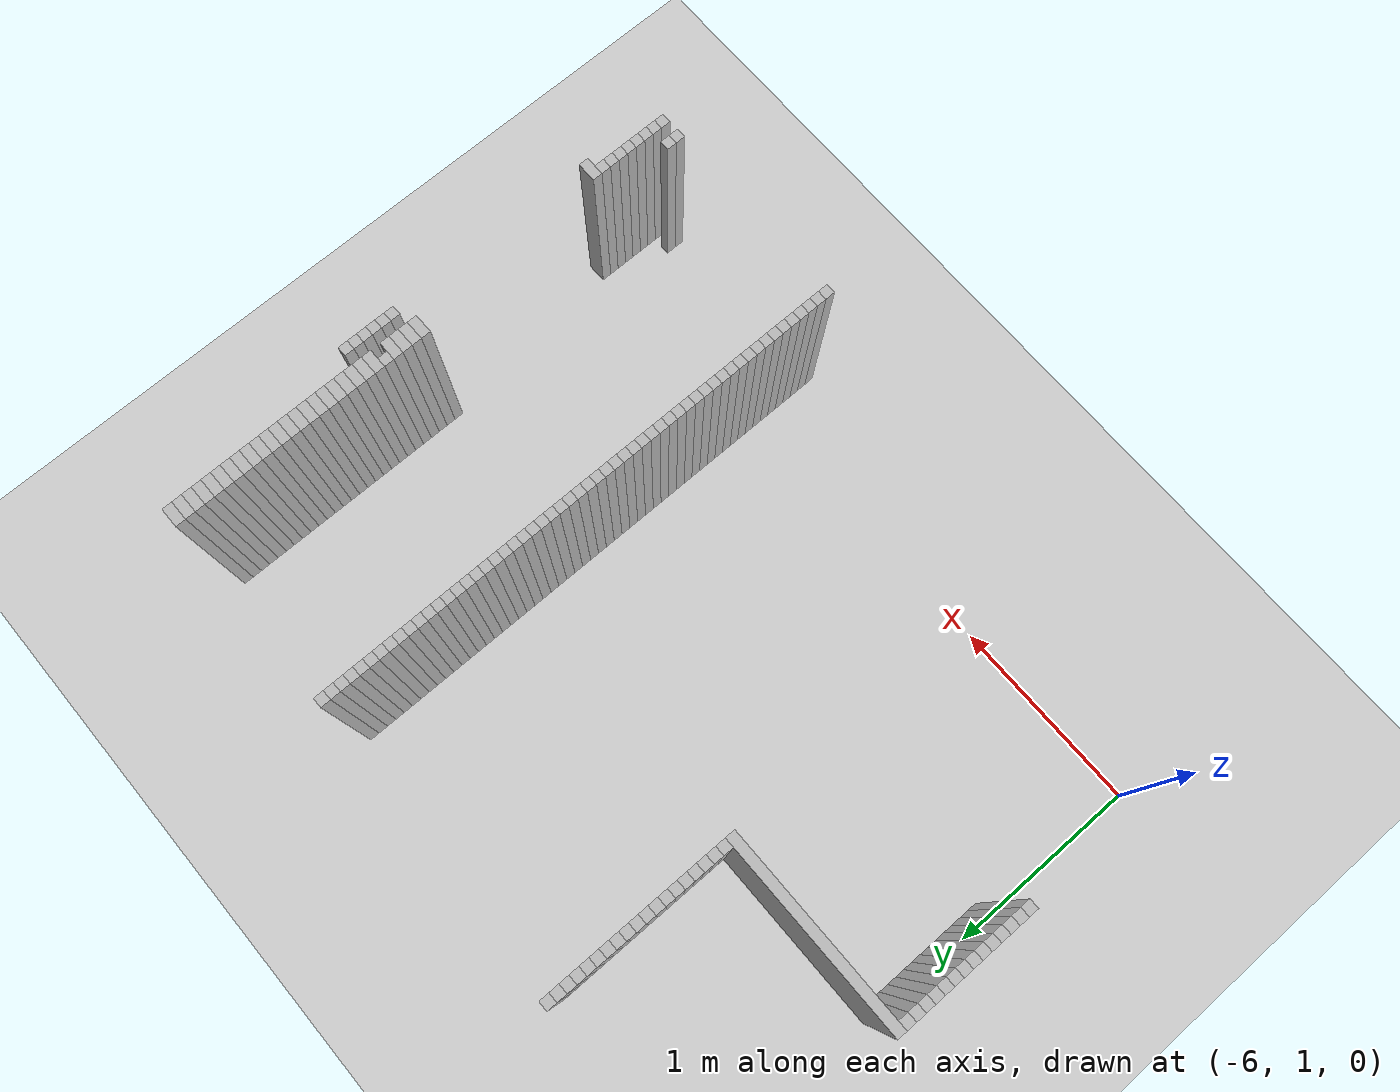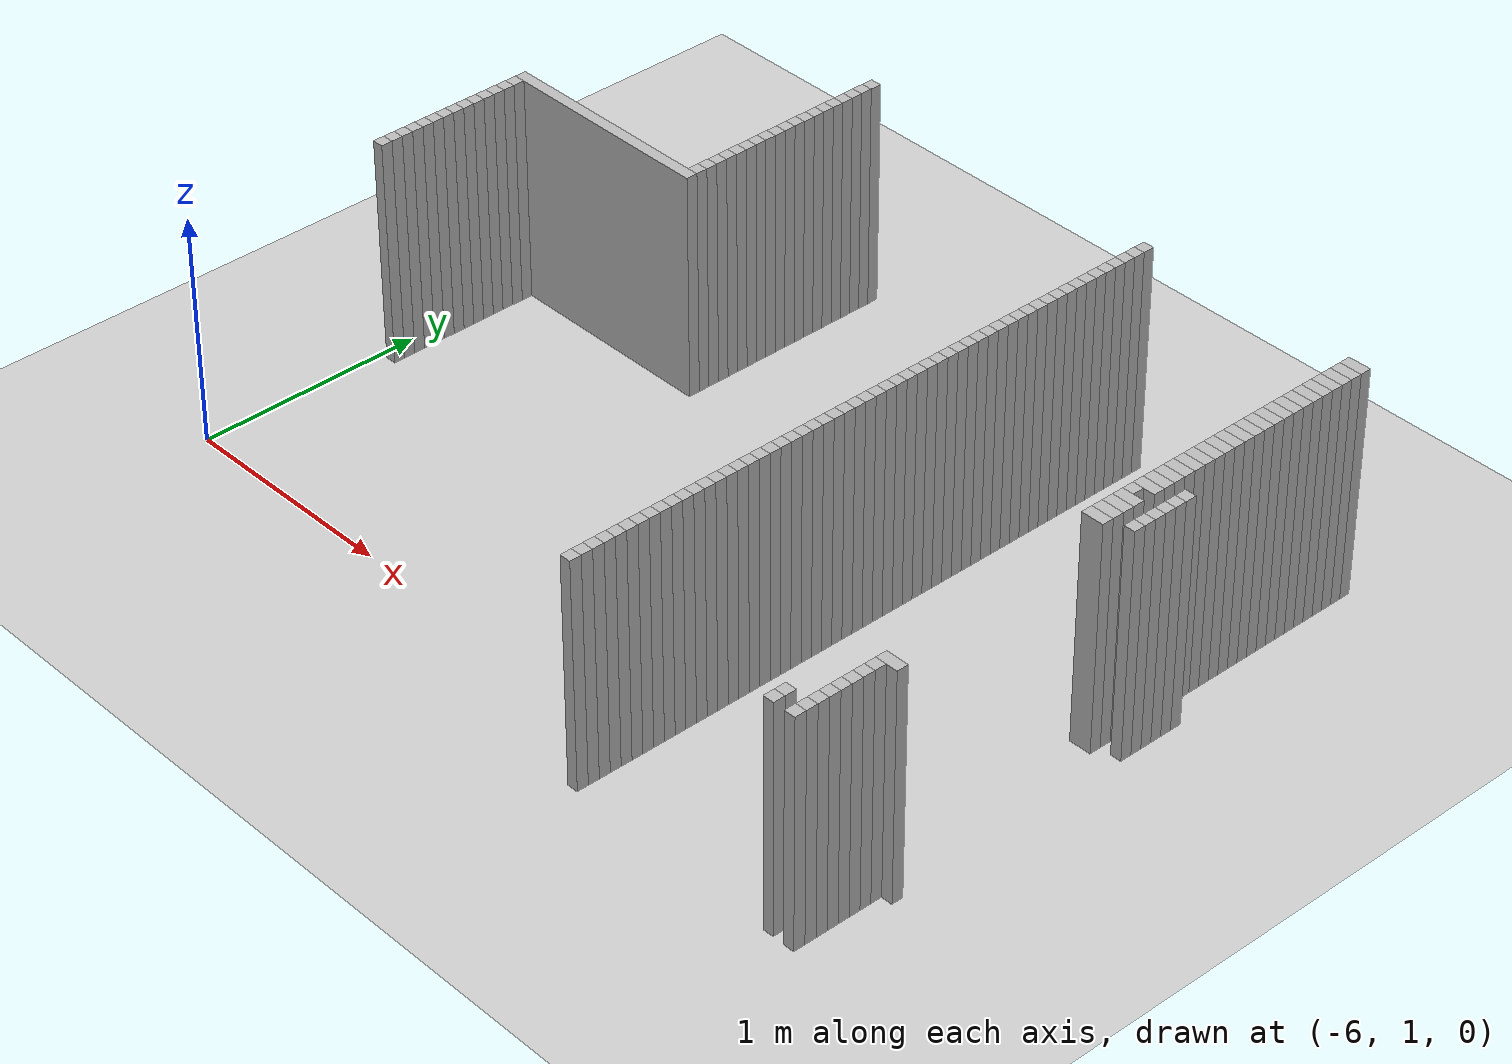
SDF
<sdf version="1.6">
 <world name="udh1_world">
  <include><uri>model://ground_plane</uri></include>
  <include><uri>model://sun</uri></include>
  <model name="wall_808">
   <static>true</static>
   <pose>-4.994999999999999 3.5199999999999996 0.5 0 0 0</pose>
   <link name="link">
    <collision name="col"><geometry><box><size>0.05 0.05 1</size></box></geometry></collision>
    <visual name="vis"><geometry><box><size>0.05 0.05 1</size></box></geometry></visual>
   </link>
  </model>
  <model name="wall_818">
   <static>true</static>
   <pose>-4.994999999999999 3.4700000000000006 0.5 0 0 0</pose>
   <link name="link">
    <collision name="col"><geometry><box><size>0.05 0.05 1</size></box></geometry></collision>
    <visual name="vis"><geometry><box><size>0.05 0.05 1</size></box></geometry></visual>
   </link>
  </model>
  <model name="wall_819">
   <static>true</static>
   <pose>-3.494999999999999 3.4700000000000006 0.5 0 0 0</pose>
   <link name="link">
    <collision name="col"><geometry><box><size>0.05 0.05 1</size></box></geometry></collision>
    <visual name="vis"><geometry><box><size>0.05 0.05 1</size></box></geometry></visual>
   </link>
  </model>
  <model name="wall_820">
   <static>true</static>
   <pose>-2.469999999999999 3.4700000000000006 0.5 0 0 0</pose>
   <link name="link">
    <collision name="col"><geometry><box><size>0.1 0.05 1</size></box></geometry></collision>
    <visual name="vis"><geometry><box><size>0.1 0.05 1</size></box></geometry></visual>
   </link>
  </model>
  <model name="wall_828">
   <static>true</static>
   <pose>-4.994999999999999 3.42 0.5 0 0 0</pose>
   <link name="link">
    <collision name="col"><geometry><box><size>0.05 0.05 1</size></box></geometry></collision>
    <visual name="vis"><geometry><box><size>0.05 0.05 1</size></box></geometry></visual>
   </link>
  </model>
  <model name="wall_829">
   <static>true</static>
   <pose>-3.494999999999999 3.42 0.5 0 0 0</pose>
   <link name="link">
    <collision name="col"><geometry><box><size>0.05 0.05 1</size></box></geometry></collision>
    <visual name="vis"><geometry><box><size>0.05 0.05 1</size></box></geometry></visual>
   </link>
  </model>
  <model name="wall_830">
   <static>true</static>
   <pose>-2.469999999999999 3.42 0.5 0 0 0</pose>
   <link name="link">
    <collision name="col"><geometry><box><size>0.1 0.05 1</size></box></geometry></collision>
    <visual name="vis"><geometry><box><size>0.1 0.05 1</size></box></geometry></visual>
   </link>
  </model>
  <model name="wall_838">
   <static>true</static>
   <pose>-4.994999999999999 3.369999999999999 0.5 0 0 0</pose>
   <link name="link">
    <collision name="col"><geometry><box><size>0.05 0.05 1</size></box></geometry></collision>
    <visual name="vis"><geometry><box><size>0.05 0.05 1</size></box></geometry></visual>
   </link>
  </model>
  <model name="wall_839">
   <static>true</static>
   <pose>-3.494999999999999 3.369999999999999 0.5 0 0 0</pose>
   <link name="link">
    <collision name="col"><geometry><box><size>0.05 0.05 1</size></box></geometry></collision>
    <visual name="vis"><geometry><box><size>0.05 0.05 1</size></box></geometry></visual>
   </link>
  </model>
  <model name="wall_840">
   <static>true</static>
   <pose>-2.469999999999999 3.369999999999999 0.5 0 0 0</pose>
   <link name="link">
    <collision name="col"><geometry><box><size>0.1 0.05 1</size></box></geometry></collision>
    <visual name="vis"><geometry><box><size>0.1 0.05 1</size></box></geometry></visual>
   </link>
  </model>
  <model name="wall_848">
   <static>true</static>
   <pose>-4.994999999999999 3.3200000000000003 0.5 0 0 0</pose>
   <link name="link">
    <collision name="col"><geometry><box><size>0.05 0.05 1</size></box></geometry></collision>
    <visual name="vis"><geometry><box><size>0.05 0.05 1</size></box></geometry></visual>
   </link>
  </model>
  <model name="wall_849">
   <static>true</static>
   <pose>-3.494999999999999 3.3200000000000003 0.5 0 0 0</pose>
   <link name="link">
    <collision name="col"><geometry><box><size>0.05 0.05 1</size></box></geometry></collision>
    <visual name="vis"><geometry><box><size>0.05 0.05 1</size></box></geometry></visual>
   </link>
  </model>
  <model name="wall_850">
   <static>true</static>
   <pose>-2.469999999999999 3.3200000000000003 0.5 0 0 0</pose>
   <link name="link">
    <collision name="col"><geometry><box><size>0.1 0.05 1</size></box></geometry></collision>
    <visual name="vis"><geometry><box><size>0.1 0.05 1</size></box></geometry></visual>
   </link>
  </model>
  <model name="wall_858">
   <static>true</static>
   <pose>-4.994999999999999 3.2699999999999996 0.5 0 0 0</pose>
   <link name="link">
    <collision name="col"><geometry><box><size>0.05 0.05 1</size></box></geometry></collision>
    <visual name="vis"><geometry><box><size>0.05 0.05 1</size></box></geometry></visual>
   </link>
  </model>
  <model name="wall_859">
   <static>true</static>
   <pose>-3.494999999999999 3.2699999999999996 0.5 0 0 0</pose>
   <link name="link">
    <collision name="col"><geometry><box><size>0.05 0.05 1</size></box></geometry></collision>
    <visual name="vis"><geometry><box><size>0.05 0.05 1</size></box></geometry></visual>
   </link>
  </model>
  <model name="wall_860">
   <static>true</static>
   <pose>-2.469999999999999 3.2699999999999996 0.5 0 0 0</pose>
   <link name="link">
    <collision name="col"><geometry><box><size>0.1 0.05 1</size></box></geometry></collision>
    <visual name="vis"><geometry><box><size>0.1 0.05 1</size></box></geometry></visual>
   </link>
  </model>
  <model name="wall_868">
   <static>true</static>
   <pose>-4.994999999999999 3.2200000000000006 0.5 0 0 0</pose>
   <link name="link">
    <collision name="col"><geometry><box><size>0.05 0.05 1</size></box></geometry></collision>
    <visual name="vis"><geometry><box><size>0.05 0.05 1</size></box></geometry></visual>
   </link>
  </model>
  <model name="wall_869">
   <static>true</static>
   <pose>-3.494999999999999 3.2200000000000006 0.5 0 0 0</pose>
   <link name="link">
    <collision name="col"><geometry><box><size>0.05 0.05 1</size></box></geometry></collision>
    <visual name="vis"><geometry><box><size>0.05 0.05 1</size></box></geometry></visual>
   </link>
  </model>
  <model name="wall_870">
   <static>true</static>
   <pose>-2.469999999999999 3.2200000000000006 0.5 0 0 0</pose>
   <link name="link">
    <collision name="col"><geometry><box><size>0.1 0.05 1</size></box></geometry></collision>
    <visual name="vis"><geometry><box><size>0.1 0.05 1</size></box></geometry></visual>
   </link>
  </model>
  <model name="wall_878">
   <static>true</static>
   <pose>-4.994999999999999 3.17 0.5 0 0 0</pose>
   <link name="link">
    <collision name="col"><geometry><box><size>0.05 0.05 1</size></box></geometry></collision>
    <visual name="vis"><geometry><box><size>0.05 0.05 1</size></box></geometry></visual>
   </link>
  </model>
  <model name="wall_879">
   <static>true</static>
   <pose>-3.494999999999999 3.17 0.5 0 0 0</pose>
   <link name="link">
    <collision name="col"><geometry><box><size>0.05 0.05 1</size></box></geometry></collision>
    <visual name="vis"><geometry><box><size>0.05 0.05 1</size></box></geometry></visual>
   </link>
  </model>
  <model name="wall_880">
   <static>true</static>
   <pose>-2.469999999999999 3.17 0.5 0 0 0</pose>
   <link name="link">
    <collision name="col"><geometry><box><size>0.1 0.05 1</size></box></geometry></collision>
    <visual name="vis"><geometry><box><size>0.1 0.05 1</size></box></geometry></visual>
   </link>
  </model>
  <model name="wall_888">
   <static>true</static>
   <pose>-4.994999999999999 3.119999999999999 0.5 0 0 0</pose>
   <link name="link">
    <collision name="col"><geometry><box><size>0.05 0.05 1</size></box></geometry></collision>
    <visual name="vis"><geometry><box><size>0.05 0.05 1</size></box></geometry></visual>
   </link>
  </model>
  <model name="wall_889">
   <static>true</static>
   <pose>-3.494999999999999 3.119999999999999 0.5 0 0 0</pose>
   <link name="link">
    <collision name="col"><geometry><box><size>0.05 0.05 1</size></box></geometry></collision>
    <visual name="vis"><geometry><box><size>0.05 0.05 1</size></box></geometry></visual>
   </link>
  </model>
  <model name="wall_890">
   <static>true</static>
   <pose>-2.469999999999999 3.119999999999999 0.5 0 0 0</pose>
   <link name="link">
    <collision name="col"><geometry><box><size>0.1 0.05 1</size></box></geometry></collision>
    <visual name="vis"><geometry><box><size>0.1 0.05 1</size></box></geometry></visual>
   </link>
  </model>
  <model name="wall_898">
   <static>true</static>
   <pose>-4.994999999999999 3.0700000000000003 0.5 0 0 0</pose>
   <link name="link">
    <collision name="col"><geometry><box><size>0.05 0.05 1</size></box></geometry></collision>
    <visual name="vis"><geometry><box><size>0.05 0.05 1</size></box></geometry></visual>
   </link>
  </model>
  <model name="wall_899">
   <static>true</static>
   <pose>-3.494999999999999 3.0700000000000003 0.5 0 0 0</pose>
   <link name="link">
    <collision name="col"><geometry><box><size>0.05 0.05 1</size></box></geometry></collision>
    <visual name="vis"><geometry><box><size>0.05 0.05 1</size></box></geometry></visual>
   </link>
  </model>
  <model name="wall_900">
   <static>true</static>
   <pose>-2.469999999999999 3.0700000000000003 0.5 0 0 0</pose>
   <link name="link">
    <collision name="col"><geometry><box><size>0.1 0.05 1</size></box></geometry></collision>
    <visual name="vis"><geometry><box><size>0.1 0.05 1</size></box></geometry></visual>
   </link>
  </model>
  <model name="wall_908">
   <static>true</static>
   <pose>-4.994999999999999 3.0199999999999996 0.5 0 0 0</pose>
   <link name="link">
    <collision name="col"><geometry><box><size>0.05 0.05 1</size></box></geometry></collision>
    <visual name="vis"><geometry><box><size>0.05 0.05 1</size></box></geometry></visual>
   </link>
  </model>
  <model name="wall_909">
   <static>true</static>
   <pose>-3.494999999999999 3.0199999999999996 0.5 0 0 0</pose>
   <link name="link">
    <collision name="col"><geometry><box><size>0.05 0.05 1</size></box></geometry></collision>
    <visual name="vis"><geometry><box><size>0.05 0.05 1</size></box></geometry></visual>
   </link>
  </model>
  <model name="wall_910">
   <static>true</static>
   <pose>-2.469999999999999 3.0199999999999996 0.5 0 0 0</pose>
   <link name="link">
    <collision name="col"><geometry><box><size>0.1 0.05 1</size></box></geometry></collision>
    <visual name="vis"><geometry><box><size>0.1 0.05 1</size></box></geometry></visual>
   </link>
  </model>
  <model name="wall_918">
   <static>true</static>
   <pose>-4.994999999999999 2.9700000000000006 0.5 0 0 0</pose>
   <link name="link">
    <collision name="col"><geometry><box><size>0.05 0.05 1</size></box></geometry></collision>
    <visual name="vis"><geometry><box><size>0.05 0.05 1</size></box></geometry></visual>
   </link>
  </model>
  <model name="wall_919">
   <static>true</static>
   <pose>-3.494999999999999 2.9700000000000006 0.5 0 0 0</pose>
   <link name="link">
    <collision name="col"><geometry><box><size>0.05 0.05 1</size></box></geometry></collision>
    <visual name="vis"><geometry><box><size>0.05 0.05 1</size></box></geometry></visual>
   </link>
  </model>
  <model name="wall_920">
   <static>true</static>
   <pose>-2.469999999999999 2.9700000000000006 0.5 0 0 0</pose>
   <link name="link">
    <collision name="col"><geometry><box><size>0.1 0.05 1</size></box></geometry></collision>
    <visual name="vis"><geometry><box><size>0.1 0.05 1</size></box></geometry></visual>
   </link>
  </model>
  <model name="wall_928">
   <static>true</static>
   <pose>-4.994999999999999 2.92 0.5 0 0 0</pose>
   <link name="link">
    <collision name="col"><geometry><box><size>0.05 0.05 1</size></box></geometry></collision>
    <visual name="vis"><geometry><box><size>0.05 0.05 1</size></box></geometry></visual>
   </link>
  </model>
  <model name="wall_929">
   <static>true</static>
   <pose>-3.494999999999999 2.92 0.5 0 0 0</pose>
   <link name="link">
    <collision name="col"><geometry><box><size>0.05 0.05 1</size></box></geometry></collision>
    <visual name="vis"><geometry><box><size>0.05 0.05 1</size></box></geometry></visual>
   </link>
  </model>
  <model name="wall_930">
   <static>true</static>
   <pose>-2.469999999999999 2.92 0.5 0 0 0</pose>
   <link name="link">
    <collision name="col"><geometry><box><size>0.1 0.05 1</size></box></geometry></collision>
    <visual name="vis"><geometry><box><size>0.1 0.05 1</size></box></geometry></visual>
   </link>
  </model>
  <model name="wall_938">
   <static>true</static>
   <pose>-4.994999999999999 2.869999999999999 0.5 0 0 0</pose>
   <link name="link">
    <collision name="col"><geometry><box><size>0.05 0.05 1</size></box></geometry></collision>
    <visual name="vis"><geometry><box><size>0.05 0.05 1</size></box></geometry></visual>
   </link>
  </model>
  <model name="wall_939">
   <static>true</static>
   <pose>-3.494999999999999 2.869999999999999 0.5 0 0 0</pose>
   <link name="link">
    <collision name="col"><geometry><box><size>0.05 0.05 1</size></box></geometry></collision>
    <visual name="vis"><geometry><box><size>0.05 0.05 1</size></box></geometry></visual>
   </link>
  </model>
  <model name="wall_940">
   <static>true</static>
   <pose>-2.469999999999999 2.869999999999999 0.5 0 0 0</pose>
   <link name="link">
    <collision name="col"><geometry><box><size>0.1 0.05 1</size></box></geometry></collision>
    <visual name="vis"><geometry><box><size>0.1 0.05 1</size></box></geometry></visual>
   </link>
  </model>
  <model name="wall_948">
   <static>true</static>
   <pose>-4.994999999999999 2.8200000000000003 0.5 0 0 0</pose>
   <link name="link">
    <collision name="col"><geometry><box><size>0.05 0.05 1</size></box></geometry></collision>
    <visual name="vis"><geometry><box><size>0.05 0.05 1</size></box></geometry></visual>
   </link>
  </model>
  <model name="wall_949">
   <static>true</static>
   <pose>-3.494999999999999 2.8200000000000003 0.5 0 0 0</pose>
   <link name="link">
    <collision name="col"><geometry><box><size>0.05 0.05 1</size></box></geometry></collision>
    <visual name="vis"><geometry><box><size>0.05 0.05 1</size></box></geometry></visual>
   </link>
  </model>
  <model name="wall_950">
   <static>true</static>
   <pose>-2.469999999999999 2.8200000000000003 0.5 0 0 0</pose>
   <link name="link">
    <collision name="col"><geometry><box><size>0.1 0.05 1</size></box></geometry></collision>
    <visual name="vis"><geometry><box><size>0.1 0.05 1</size></box></geometry></visual>
   </link>
  </model>
  <model name="wall_958">
   <static>true</static>
   <pose>-4.994999999999999 2.7699999999999996 0.5 0 0 0</pose>
   <link name="link">
    <collision name="col"><geometry><box><size>0.05 0.05 1</size></box></geometry></collision>
    <visual name="vis"><geometry><box><size>0.05 0.05 1</size></box></geometry></visual>
   </link>
  </model>
  <model name="wall_959">
   <static>true</static>
   <pose>-3.494999999999999 2.7699999999999996 0.5 0 0 0</pose>
   <link name="link">
    <collision name="col"><geometry><box><size>0.05 0.05 1</size></box></geometry></collision>
    <visual name="vis"><geometry><box><size>0.05 0.05 1</size></box></geometry></visual>
   </link>
  </model>
  <model name="wall_960">
   <static>true</static>
   <pose>-2.469999999999999 2.7699999999999996 0.5 0 0 0</pose>
   <link name="link">
    <collision name="col"><geometry><box><size>0.1 0.05 1</size></box></geometry></collision>
    <visual name="vis"><geometry><box><size>0.1 0.05 1</size></box></geometry></visual>
   </link>
  </model>
  <model name="wall_968">
   <static>true</static>
   <pose>-4.994999999999999 2.7200000000000006 0.5 0 0 0</pose>
   <link name="link">
    <collision name="col"><geometry><box><size>0.05 0.05 1</size></box></geometry></collision>
    <visual name="vis"><geometry><box><size>0.05 0.05 1</size></box></geometry></visual>
   </link>
  </model>
  <model name="wall_969">
   <static>true</static>
   <pose>-3.494999999999999 2.7200000000000006 0.5 0 0 0</pose>
   <link name="link">
    <collision name="col"><geometry><box><size>0.05 0.05 1</size></box></geometry></collision>
    <visual name="vis"><geometry><box><size>0.05 0.05 1</size></box></geometry></visual>
   </link>
  </model>
  <model name="wall_970">
   <static>true</static>
   <pose>-2.469999999999999 2.7200000000000006 0.5 0 0 0</pose>
   <link name="link">
    <collision name="col"><geometry><box><size>0.1 0.05 1</size></box></geometry></collision>
    <visual name="vis"><geometry><box><size>0.1 0.05 1</size></box></geometry></visual>
   </link>
  </model>
  <model name="wall_978">
   <static>true</static>
   <pose>-4.994999999999999 2.67 0.5 0 0 0</pose>
   <link name="link">
    <collision name="col"><geometry><box><size>0.05 0.05 1</size></box></geometry></collision>
    <visual name="vis"><geometry><box><size>0.05 0.05 1</size></box></geometry></visual>
   </link>
  </model>
  <model name="wall_979">
   <static>true</static>
   <pose>-3.494999999999999 2.67 0.5 0 0 0</pose>
   <link name="link">
    <collision name="col"><geometry><box><size>0.05 0.05 1</size></box></geometry></collision>
    <visual name="vis"><geometry><box><size>0.05 0.05 1</size></box></geometry></visual>
   </link>
  </model>
  <model name="wall_980">
   <static>true</static>
   <pose>-2.469999999999999 2.67 0.5 0 0 0</pose>
   <link name="link">
    <collision name="col"><geometry><box><size>0.1 0.05 1</size></box></geometry></collision>
    <visual name="vis"><geometry><box><size>0.1 0.05 1</size></box></geometry></visual>
   </link>
  </model>
  <model name="wall_988">
   <static>true</static>
   <pose>-4.994999999999999 2.619999999999999 0.5 0 0 0</pose>
   <link name="link">
    <collision name="col"><geometry><box><size>0.05 0.05 1</size></box></geometry></collision>
    <visual name="vis"><geometry><box><size>0.05 0.05 1</size></box></geometry></visual>
   </link>
  </model>
  <model name="wall_989">
   <static>true</static>
   <pose>-3.494999999999999 2.619999999999999 0.5 0 0 0</pose>
   <link name="link">
    <collision name="col"><geometry><box><size>0.05 0.05 1</size></box></geometry></collision>
    <visual name="vis"><geometry><box><size>0.05 0.05 1</size></box></geometry></visual>
   </link>
  </model>
  <model name="wall_990">
   <static>true</static>
   <pose>-2.469999999999999 2.619999999999999 0.5 0 0 0</pose>
   <link name="link">
    <collision name="col"><geometry><box><size>0.1 0.05 1</size></box></geometry></collision>
    <visual name="vis"><geometry><box><size>0.1 0.05 1</size></box></geometry></visual>
   </link>
  </model>
  <model name="wall_998">
   <static>true</static>
   <pose>-5.469999999999999 2.5700000000000003 0.5 0 0 0</pose>
   <link name="link">
    <collision name="col"><geometry><box><size>1.0 0.05 1</size></box></geometry></collision>
    <visual name="vis"><geometry><box><size>1.0 0.05 1</size></box></geometry></visual>
   </link>
  </model>
  <model name="wall_999">
   <static>true</static>
   <pose>-3.494999999999999 2.5700000000000003 0.5 0 0 0</pose>
   <link name="link">
    <collision name="col"><geometry><box><size>0.05 0.05 1</size></box></geometry></collision>
    <visual name="vis"><geometry><box><size>0.05 0.05 1</size></box></geometry></visual>
   </link>
  </model>
  <model name="wall_1000">
   <static>true</static>
   <pose>-2.469999999999999 2.5700000000000003 0.5 0 0 0</pose>
   <link name="link">
    <collision name="col"><geometry><box><size>0.1 0.05 1</size></box></geometry></collision>
    <visual name="vis"><geometry><box><size>0.1 0.05 1</size></box></geometry></visual>
   </link>
  </model>
  <model name="wall_1008">
   <static>true</static>
   <pose>-5.944999999999999 2.5199999999999996 0.5 0 0 0</pose>
   <link name="link">
    <collision name="col"><geometry><box><size>0.05 0.05 1</size></box></geometry></collision>
    <visual name="vis"><geometry><box><size>0.05 0.05 1</size></box></geometry></visual>
   </link>
  </model>
  <model name="wall_1009">
   <static>true</static>
   <pose>-3.494999999999999 2.5199999999999996 0.5 0 0 0</pose>
   <link name="link">
    <collision name="col"><geometry><box><size>0.05 0.05 1</size></box></geometry></collision>
    <visual name="vis"><geometry><box><size>0.05 0.05 1</size></box></geometry></visual>
   </link>
  </model>
  <model name="wall_1010">
   <static>true</static>
   <pose>-2.469999999999999 2.5199999999999996 0.5 0 0 0</pose>
   <link name="link">
    <collision name="col"><geometry><box><size>0.1 0.05 1</size></box></geometry></collision>
    <visual name="vis"><geometry><box><size>0.1 0.05 1</size></box></geometry></visual>
   </link>
  </model>
  <model name="wall_1018">
   <static>true</static>
   <pose>-5.944999999999999 2.4700000000000006 0.5 0 0 0</pose>
   <link name="link">
    <collision name="col"><geometry><box><size>0.05 0.05 1</size></box></geometry></collision>
    <visual name="vis"><geometry><box><size>0.05 0.05 1</size></box></geometry></visual>
   </link>
  </model>
  <model name="wall_1019">
   <static>true</static>
   <pose>-3.494999999999999 2.4700000000000006 0.5 0 0 0</pose>
   <link name="link">
    <collision name="col"><geometry><box><size>0.05 0.05 1</size></box></geometry></collision>
    <visual name="vis"><geometry><box><size>0.05 0.05 1</size></box></geometry></visual>
   </link>
  </model>
  <model name="wall_1020">
   <static>true</static>
   <pose>-2.469999999999999 2.4700000000000006 0.5 0 0 0</pose>
   <link name="link">
    <collision name="col"><geometry><box><size>0.1 0.05 1</size></box></geometry></collision>
    <visual name="vis"><geometry><box><size>0.1 0.05 1</size></box></geometry></visual>
   </link>
  </model>
  <model name="wall_1021">
   <static>true</static>
   <pose>-2.344999999999999 2.4700000000000006 0.5 0 0 0</pose>
   <link name="link">
    <collision name="col"><geometry><box><size>0.05 0.05 1</size></box></geometry></collision>
    <visual name="vis"><geometry><box><size>0.05 0.05 1</size></box></geometry></visual>
   </link>
  </model>
  <model name="wall_1028">
   <static>true</static>
   <pose>-5.944999999999999 2.42 0.5 0 0 0</pose>
   <link name="link">
    <collision name="col"><geometry><box><size>0.05 0.05 1</size></box></geometry></collision>
    <visual name="vis"><geometry><box><size>0.05 0.05 1</size></box></geometry></visual>
   </link>
  </model>
  <model name="wall_1029">
   <static>true</static>
   <pose>-3.494999999999999 2.42 0.5 0 0 0</pose>
   <link name="link">
    <collision name="col"><geometry><box><size>0.05 0.05 1</size></box></geometry></collision>
    <visual name="vis"><geometry><box><size>0.05 0.05 1</size></box></geometry></visual>
   </link>
  </model>
  <model name="wall_1030">
   <static>true</static>
   <pose>-2.469999999999999 2.42 0.5 0 0 0</pose>
   <link name="link">
    <collision name="col"><geometry><box><size>0.1 0.05 1</size></box></geometry></collision>
    <visual name="vis"><geometry><box><size>0.1 0.05 1</size></box></geometry></visual>
   </link>
  </model>
  <model name="wall_1031">
   <static>true</static>
   <pose>-2.344999999999999 2.42 0.5 0 0 0</pose>
   <link name="link">
    <collision name="col"><geometry><box><size>0.05 0.05 1</size></box></geometry></collision>
    <visual name="vis"><geometry><box><size>0.05 0.05 1</size></box></geometry></visual>
   </link>
  </model>
  <model name="wall_1038">
   <static>true</static>
   <pose>-5.944999999999999 2.369999999999999 0.5 0 0 0</pose>
   <link name="link">
    <collision name="col"><geometry><box><size>0.05 0.05 1</size></box></geometry></collision>
    <visual name="vis"><geometry><box><size>0.05 0.05 1</size></box></geometry></visual>
   </link>
  </model>
  <model name="wall_1039">
   <static>true</static>
   <pose>-3.494999999999999 2.369999999999999 0.5 0 0 0</pose>
   <link name="link">
    <collision name="col"><geometry><box><size>0.05 0.05 1</size></box></geometry></collision>
    <visual name="vis"><geometry><box><size>0.05 0.05 1</size></box></geometry></visual>
   </link>
  </model>
  <model name="wall_1040">
   <static>true</static>
   <pose>-2.494999999999999 2.369999999999999 0.5 0 0 0</pose>
   <link name="link">
    <collision name="col"><geometry><box><size>0.05 0.05 1</size></box></geometry></collision>
    <visual name="vis"><geometry><box><size>0.05 0.05 1</size></box></geometry></visual>
   </link>
  </model>
  <model name="wall_1041">
   <static>true</static>
   <pose>-2.344999999999999 2.369999999999999 0.5 0 0 0</pose>
   <link name="link">
    <collision name="col"><geometry><box><size>0.05 0.05 1</size></box></geometry></collision>
    <visual name="vis"><geometry><box><size>0.05 0.05 1</size></box></geometry></visual>
   </link>
  </model>
  <model name="wall_1048">
   <static>true</static>
   <pose>-5.944999999999999 2.3200000000000003 0.5 0 0 0</pose>
   <link name="link">
    <collision name="col"><geometry><box><size>0.05 0.05 1</size></box></geometry></collision>
    <visual name="vis"><geometry><box><size>0.05 0.05 1</size></box></geometry></visual>
   </link>
  </model>
  <model name="wall_1049">
   <static>true</static>
   <pose>-3.494999999999999 2.3200000000000003 0.5 0 0 0</pose>
   <link name="link">
    <collision name="col"><geometry><box><size>0.05 0.05 1</size></box></geometry></collision>
    <visual name="vis"><geometry><box><size>0.05 0.05 1</size></box></geometry></visual>
   </link>
  </model>
  <model name="wall_1050">
   <static>true</static>
   <pose>-2.469999999999999 2.3200000000000003 0.5 0 0 0</pose>
   <link name="link">
    <collision name="col"><geometry><box><size>0.1 0.05 1</size></box></geometry></collision>
    <visual name="vis"><geometry><box><size>0.1 0.05 1</size></box></geometry></visual>
   </link>
  </model>
  <model name="wall_1051">
   <static>true</static>
   <pose>-2.344999999999999 2.3200000000000003 0.5 0 0 0</pose>
   <link name="link">
    <collision name="col"><geometry><box><size>0.05 0.05 1</size></box></geometry></collision>
    <visual name="vis"><geometry><box><size>0.05 0.05 1</size></box></geometry></visual>
   </link>
  </model>
  <model name="wall_1058">
   <static>true</static>
   <pose>-5.944999999999999 2.2699999999999996 0.5 0 0 0</pose>
   <link name="link">
    <collision name="col"><geometry><box><size>0.05 0.05 1</size></box></geometry></collision>
    <visual name="vis"><geometry><box><size>0.05 0.05 1</size></box></geometry></visual>
   </link>
  </model>
  <model name="wall_1059">
   <static>true</static>
   <pose>-3.494999999999999 2.2699999999999996 0.5 0 0 0</pose>
   <link name="link">
    <collision name="col"><geometry><box><size>0.05 0.05 1</size></box></geometry></collision>
    <visual name="vis"><geometry><box><size>0.05 0.05 1</size></box></geometry></visual>
   </link>
  </model>
  <model name="wall_1060">
   <static>true</static>
   <pose>-2.469999999999999 2.2699999999999996 0.5 0 0 0</pose>
   <link name="link">
    <collision name="col"><geometry><box><size>0.1 0.05 1</size></box></geometry></collision>
    <visual name="vis"><geometry><box><size>0.1 0.05 1</size></box></geometry></visual>
   </link>
  </model>
  <model name="wall_1061">
   <static>true</static>
   <pose>-2.344999999999999 2.2699999999999996 0.5 0 0 0</pose>
   <link name="link">
    <collision name="col"><geometry><box><size>0.05 0.05 1</size></box></geometry></collision>
    <visual name="vis"><geometry><box><size>0.05 0.05 1</size></box></geometry></visual>
   </link>
  </model>
  <model name="wall_1068">
   <static>true</static>
   <pose>-5.944999999999999 2.2200000000000006 0.5 0 0 0</pose>
   <link name="link">
    <collision name="col"><geometry><box><size>0.05 0.05 1</size></box></geometry></collision>
    <visual name="vis"><geometry><box><size>0.05 0.05 1</size></box></geometry></visual>
   </link>
  </model>
  <model name="wall_1069">
   <static>true</static>
   <pose>-3.494999999999999 2.2200000000000006 0.5 0 0 0</pose>
   <link name="link">
    <collision name="col"><geometry><box><size>0.05 0.05 1</size></box></geometry></collision>
    <visual name="vis"><geometry><box><size>0.05 0.05 1</size></box></geometry></visual>
   </link>
  </model>
  <model name="wall_1070">
   <static>true</static>
   <pose>-2.469999999999999 2.2200000000000006 0.5 0 0 0</pose>
   <link name="link">
    <collision name="col"><geometry><box><size>0.1 0.05 1</size></box></geometry></collision>
    <visual name="vis"><geometry><box><size>0.1 0.05 1</size></box></geometry></visual>
   </link>
  </model>
  <model name="wall_1071">
   <static>true</static>
   <pose>-2.344999999999999 2.2200000000000006 0.5 0 0 0</pose>
   <link name="link">
    <collision name="col"><geometry><box><size>0.05 0.05 1</size></box></geometry></collision>
    <visual name="vis"><geometry><box><size>0.05 0.05 1</size></box></geometry></visual>
   </link>
  </model>
  <model name="wall_1078">
   <static>true</static>
   <pose>-5.944999999999999 2.17 0.5 0 0 0</pose>
   <link name="link">
    <collision name="col"><geometry><box><size>0.05 0.05 1</size></box></geometry></collision>
    <visual name="vis"><geometry><box><size>0.05 0.05 1</size></box></geometry></visual>
   </link>
  </model>
  <model name="wall_1079">
   <static>true</static>
   <pose>-3.494999999999999 2.17 0.5 0 0 0</pose>
   <link name="link">
    <collision name="col"><geometry><box><size>0.05 0.05 1</size></box></geometry></collision>
    <visual name="vis"><geometry><box><size>0.05 0.05 1</size></box></geometry></visual>
   </link>
  </model>
  <model name="wall_1080">
   <static>true</static>
   <pose>-2.469999999999999 2.17 0.5 0 0 0</pose>
   <link name="link">
    <collision name="col"><geometry><box><size>0.1 0.05 1</size></box></geometry></collision>
    <visual name="vis"><geometry><box><size>0.1 0.05 1</size></box></geometry></visual>
   </link>
  </model>
  <model name="wall_1095">
   <static>true</static>
   <pose>-5.944999999999999 2.119999999999999 0.5 0 0 0</pose>
   <link name="link">
    <collision name="col"><geometry><box><size>0.05 0.05 1</size></box></geometry></collision>
    <visual name="vis"><geometry><box><size>0.05 0.05 1</size></box></geometry></visual>
   </link>
  </model>
  <model name="wall_1096">
   <static>true</static>
   <pose>-3.494999999999999 2.119999999999999 0.5 0 0 0</pose>
   <link name="link">
    <collision name="col"><geometry><box><size>0.05 0.05 1</size></box></geometry></collision>
    <visual name="vis"><geometry><box><size>0.05 0.05 1</size></box></geometry></visual>
   </link>
  </model>
  <model name="wall_1105">
   <static>true</static>
   <pose>-5.944999999999999 2.0700000000000003 0.5 0 0 0</pose>
   <link name="link">
    <collision name="col"><geometry><box><size>0.05 0.05 1</size></box></geometry></collision>
    <visual name="vis"><geometry><box><size>0.05 0.05 1</size></box></geometry></visual>
   </link>
  </model>
  <model name="wall_1106">
   <static>true</static>
   <pose>-3.494999999999999 2.0700000000000003 0.5 0 0 0</pose>
   <link name="link">
    <collision name="col"><geometry><box><size>0.05 0.05 1</size></box></geometry></collision>
    <visual name="vis"><geometry><box><size>0.05 0.05 1</size></box></geometry></visual>
   </link>
  </model>
  <model name="wall_1115">
   <static>true</static>
   <pose>-5.944999999999999 2.0199999999999996 0.5 0 0 0</pose>
   <link name="link">
    <collision name="col"><geometry><box><size>0.05 0.05 1</size></box></geometry></collision>
    <visual name="vis"><geometry><box><size>0.05 0.05 1</size></box></geometry></visual>
   </link>
  </model>
  <model name="wall_1116">
   <static>true</static>
   <pose>-3.494999999999999 2.0199999999999996 0.5 0 0 0</pose>
   <link name="link">
    <collision name="col"><geometry><box><size>0.05 0.05 1</size></box></geometry></collision>
    <visual name="vis"><geometry><box><size>0.05 0.05 1</size></box></geometry></visual>
   </link>
  </model>
  <model name="wall_1125">
   <static>true</static>
   <pose>-5.944999999999999 1.9700000000000006 0.5 0 0 0</pose>
   <link name="link">
    <collision name="col"><geometry><box><size>0.05 0.05 1</size></box></geometry></collision>
    <visual name="vis"><geometry><box><size>0.05 0.05 1</size></box></geometry></visual>
   </link>
  </model>
  <model name="wall_1126">
   <static>true</static>
   <pose>-3.494999999999999 1.9700000000000006 0.5 0 0 0</pose>
   <link name="link">
    <collision name="col"><geometry><box><size>0.05 0.05 1</size></box></geometry></collision>
    <visual name="vis"><geometry><box><size>0.05 0.05 1</size></box></geometry></visual>
   </link>
  </model>
  <model name="wall_1135">
   <static>true</static>
   <pose>-5.944999999999999 1.92 0.5 0 0 0</pose>
   <link name="link">
    <collision name="col"><geometry><box><size>0.05 0.05 1</size></box></geometry></collision>
    <visual name="vis"><geometry><box><size>0.05 0.05 1</size></box></geometry></visual>
   </link>
  </model>
  <model name="wall_1136">
   <static>true</static>
   <pose>-3.494999999999999 1.92 0.5 0 0 0</pose>
   <link name="link">
    <collision name="col"><geometry><box><size>0.05 0.05 1</size></box></geometry></collision>
    <visual name="vis"><geometry><box><size>0.05 0.05 1</size></box></geometry></visual>
   </link>
  </model>
  <model name="wall_1145">
   <static>true</static>
   <pose>-5.944999999999999 1.8699999999999992 0.5 0 0 0</pose>
   <link name="link">
    <collision name="col"><geometry><box><size>0.05 0.05 1</size></box></geometry></collision>
    <visual name="vis"><geometry><box><size>0.05 0.05 1</size></box></geometry></visual>
   </link>
  </model>
  <model name="wall_1146">
   <static>true</static>
   <pose>-3.494999999999999 1.8699999999999992 0.5 0 0 0</pose>
   <link name="link">
    <collision name="col"><geometry><box><size>0.05 0.05 1</size></box></geometry></collision>
    <visual name="vis"><geometry><box><size>0.05 0.05 1</size></box></geometry></visual>
   </link>
  </model>
  <model name="wall_1156">
   <static>true</static>
   <pose>-3.494999999999999 1.8200000000000003 0.5 0 0 0</pose>
   <link name="link">
    <collision name="col"><geometry><box><size>0.05 0.05 1</size></box></geometry></collision>
    <visual name="vis"><geometry><box><size>0.05 0.05 1</size></box></geometry></visual>
   </link>
  </model>
  <model name="wall_1166">
   <static>true</static>
   <pose>-3.494999999999999 1.7699999999999996 0.5 0 0 0</pose>
   <link name="link">
    <collision name="col"><geometry><box><size>0.05 0.05 1</size></box></geometry></collision>
    <visual name="vis"><geometry><box><size>0.05 0.05 1</size></box></geometry></visual>
   </link>
  </model>
  <model name="wall_1176">
   <static>true</static>
   <pose>-3.494999999999999 1.7200000000000006 0.5 0 0 0</pose>
   <link name="link">
    <collision name="col"><geometry><box><size>0.05 0.05 1</size></box></geometry></collision>
    <visual name="vis"><geometry><box><size>0.05 0.05 1</size></box></geometry></visual>
   </link>
  </model>
  <model name="wall_1186">
   <static>true</static>
   <pose>-3.494999999999999 1.67 0.5 0 0 0</pose>
   <link name="link">
    <collision name="col"><geometry><box><size>0.05 0.05 1</size></box></geometry></collision>
    <visual name="vis"><geometry><box><size>0.05 0.05 1</size></box></geometry></visual>
   </link>
  </model>
  <model name="wall_1195">
   <static>true</static>
   <pose>-3.494999999999999 1.6199999999999992 0.5 0 0 0</pose>
   <link name="link">
    <collision name="col"><geometry><box><size>0.05 0.05 1</size></box></geometry></collision>
    <visual name="vis"><geometry><box><size>0.05 0.05 1</size></box></geometry></visual>
   </link>
  </model>
  <model name="wall_1204">
   <static>true</static>
   <pose>-3.494999999999999 1.5700000000000003 0.5 0 0 0</pose>
   <link name="link">
    <collision name="col"><geometry><box><size>0.05 0.05 1</size></box></geometry></collision>
    <visual name="vis"><geometry><box><size>0.05 0.05 1</size></box></geometry></visual>
   </link>
  </model>
  <model name="wall_1214">
   <static>true</static>
   <pose>-3.494999999999999 1.5199999999999996 0.5 0 0 0</pose>
   <link name="link">
    <collision name="col"><geometry><box><size>0.05 0.05 1</size></box></geometry></collision>
    <visual name="vis"><geometry><box><size>0.05 0.05 1</size></box></geometry></visual>
   </link>
  </model>
  <model name="wall_1224">
   <static>true</static>
   <pose>-3.494999999999999 1.4700000000000006 0.5 0 0 0</pose>
   <link name="link">
    <collision name="col"><geometry><box><size>0.05 0.05 1</size></box></geometry></collision>
    <visual name="vis"><geometry><box><size>0.05 0.05 1</size></box></geometry></visual>
   </link>
  </model>
  <model name="wall_1233">
   <static>true</static>
   <pose>-3.494999999999999 1.42 0.5 0 0 0</pose>
   <link name="link">
    <collision name="col"><geometry><box><size>0.05 0.05 1</size></box></geometry></collision>
    <visual name="vis"><geometry><box><size>0.05 0.05 1</size></box></geometry></visual>
   </link>
  </model>
  <model name="wall_1243">
   <static>true</static>
   <pose>-3.494999999999999 1.3699999999999992 0.5 0 0 0</pose>
   <link name="link">
    <collision name="col"><geometry><box><size>0.05 0.05 1</size></box></geometry></collision>
    <visual name="vis"><geometry><box><size>0.05 0.05 1</size></box></geometry></visual>
   </link>
  </model>
  <model name="wall_1253">
   <static>true</static>
   <pose>-3.494999999999999 1.3200000000000003 0.5 0 0 0</pose>
   <link name="link">
    <collision name="col"><geometry><box><size>0.05 0.05 1</size></box></geometry></collision>
    <visual name="vis"><geometry><box><size>0.05 0.05 1</size></box></geometry></visual>
   </link>
  </model>
  <model name="wall_1263">
   <static>true</static>
   <pose>-3.494999999999999 1.2699999999999996 0.5 0 0 0</pose>
   <link name="link">
    <collision name="col"><geometry><box><size>0.05 0.05 1</size></box></geometry></collision>
    <visual name="vis"><geometry><box><size>0.05 0.05 1</size></box></geometry></visual>
   </link>
  </model>
  <model name="wall_1273">
   <static>true</static>
   <pose>-3.494999999999999 1.2200000000000006 0.5 0 0 0</pose>
   <link name="link">
    <collision name="col"><geometry><box><size>0.05 0.05 1</size></box></geometry></collision>
    <visual name="vis"><geometry><box><size>0.05 0.05 1</size></box></geometry></visual>
   </link>
  </model>
  <model name="wall_1282">
   <static>true</static>
   <pose>-3.494999999999999 1.17 0.5 0 0 0</pose>
   <link name="link">
    <collision name="col"><geometry><box><size>0.05 0.05 1</size></box></geometry></collision>
    <visual name="vis"><geometry><box><size>0.05 0.05 1</size></box></geometry></visual>
   </link>
  </model>
  <model name="wall_1291">
   <static>true</static>
   <pose>-3.494999999999999 1.1199999999999992 0.5 0 0 0</pose>
   <link name="link">
    <collision name="col"><geometry><box><size>0.05 0.05 1</size></box></geometry></collision>
    <visual name="vis"><geometry><box><size>0.05 0.05 1</size></box></geometry></visual>
   </link>
  </model>
  <model name="wall_1292">
   <static>true</static>
   <pose>-2.369999999999999 1.1199999999999992 0.5 0 0 0</pose>
   <link name="link">
    <collision name="col"><geometry><box><size>0.1 0.05 1</size></box></geometry></collision>
    <visual name="vis"><geometry><box><size>0.1 0.05 1</size></box></geometry></visual>
   </link>
  </model>
  <model name="wall_1304">
   <static>true</static>
   <pose>-3.494999999999999 1.0700000000000003 0.5 0 0 0</pose>
   <link name="link">
    <collision name="col"><geometry><box><size>0.05 0.05 1</size></box></geometry></collision>
    <visual name="vis"><geometry><box><size>0.05 0.05 1</size></box></geometry></visual>
   </link>
  </model>
  <model name="wall_1305">
   <static>true</static>
   <pose>-2.3949999999999996 1.0700000000000003 0.5 0 0 0</pose>
   <link name="link">
    <collision name="col"><geometry><box><size>0.05 0.05 1</size></box></geometry></collision>
    <visual name="vis"><geometry><box><size>0.05 0.05 1</size></box></geometry></visual>
   </link>
  </model>
  <model name="wall_1312">
   <static>true</static>
   <pose>-3.494999999999999 1.0199999999999996 0.5 0 0 0</pose>
   <link name="link">
    <collision name="col"><geometry><box><size>0.05 0.05 1</size></box></geometry></collision>
    <visual name="vis"><geometry><box><size>0.05 0.05 1</size></box></geometry></visual>
   </link>
  </model>
  <model name="wall_1313">
   <static>true</static>
   <pose>-2.3949999999999996 1.0199999999999996 0.5 0 0 0</pose>
   <link name="link">
    <collision name="col"><geometry><box><size>0.05 0.05 1</size></box></geometry></collision>
    <visual name="vis"><geometry><box><size>0.05 0.05 1</size></box></geometry></visual>
   </link>
  </model>
  <model name="wall_1319">
   <static>true</static>
   <pose>-3.494999999999999 0.9700000000000006 0.5 0 0 0</pose>
   <link name="link">
    <collision name="col"><geometry><box><size>0.05 0.05 1</size></box></geometry></collision>
    <visual name="vis"><geometry><box><size>0.05 0.05 1</size></box></geometry></visual>
   </link>
  </model>
  <model name="wall_1320">
   <static>true</static>
   <pose>-2.3949999999999996 0.9700000000000006 0.5 0 0 0</pose>
   <link name="link">
    <collision name="col"><geometry><box><size>0.05 0.05 1</size></box></geometry></collision>
    <visual name="vis"><geometry><box><size>0.05 0.05 1</size></box></geometry></visual>
   </link>
  </model>
  <model name="wall_1326">
   <static>true</static>
   <pose>-3.494999999999999 0.9199999999999999 0.5 0 0 0</pose>
   <link name="link">
    <collision name="col"><geometry><box><size>0.05 0.05 1</size></box></geometry></collision>
    <visual name="vis"><geometry><box><size>0.05 0.05 1</size></box></geometry></visual>
   </link>
  </model>
  <model name="wall_1327">
   <static>true</static>
   <pose>-2.3949999999999996 0.9199999999999999 0.5 0 0 0</pose>
   <link name="link">
    <collision name="col"><geometry><box><size>0.05 0.05 1</size></box></geometry></collision>
    <visual name="vis"><geometry><box><size>0.05 0.05 1</size></box></geometry></visual>
   </link>
  </model>
  <model name="wall_1333">
   <static>true</static>
   <pose>-3.494999999999999 0.8699999999999992 0.5 0 0 0</pose>
   <link name="link">
    <collision name="col"><geometry><box><size>0.05 0.05 1</size></box></geometry></collision>
    <visual name="vis"><geometry><box><size>0.05 0.05 1</size></box></geometry></visual>
   </link>
  </model>
  <model name="wall_1334">
   <static>true</static>
   <pose>-2.3949999999999996 0.8699999999999992 0.5 0 0 0</pose>
   <link name="link">
    <collision name="col"><geometry><box><size>0.05 0.05 1</size></box></geometry></collision>
    <visual name="vis"><geometry><box><size>0.05 0.05 1</size></box></geometry></visual>
   </link>
  </model>
  <model name="wall_1340">
   <static>true</static>
   <pose>-3.494999999999999 0.8200000000000003 0.5 0 0 0</pose>
   <link name="link">
    <collision name="col"><geometry><box><size>0.05 0.05 1</size></box></geometry></collision>
    <visual name="vis"><geometry><box><size>0.05 0.05 1</size></box></geometry></visual>
   </link>
  </model>
  <model name="wall_1341">
   <static>true</static>
   <pose>-2.3949999999999996 0.8200000000000003 0.5 0 0 0</pose>
   <link name="link">
    <collision name="col"><geometry><box><size>0.05 0.05 1</size></box></geometry></collision>
    <visual name="vis"><geometry><box><size>0.05 0.05 1</size></box></geometry></visual>
   </link>
  </model>
  <model name="wall_1347">
   <static>true</static>
   <pose>-3.494999999999999 0.7699999999999996 0.5 0 0 0</pose>
   <link name="link">
    <collision name="col"><geometry><box><size>0.05 0.05 1</size></box></geometry></collision>
    <visual name="vis"><geometry><box><size>0.05 0.05 1</size></box></geometry></visual>
   </link>
  </model>
  <model name="wall_1348">
   <static>true</static>
   <pose>-2.494999999999999 0.7699999999999996 0.5 0 0 0</pose>
   <link name="link">
    <collision name="col"><geometry><box><size>0.05 0.05 1</size></box></geometry></collision>
    <visual name="vis"><geometry><box><size>0.05 0.05 1</size></box></geometry></visual>
   </link>
  </model>
  <model name="wall_1349">
   <static>true</static>
   <pose>-2.3949999999999996 0.7699999999999996 0.5 0 0 0</pose>
   <link name="link">
    <collision name="col"><geometry><box><size>0.05 0.05 1</size></box></geometry></collision>
    <visual name="vis"><geometry><box><size>0.05 0.05 1</size></box></geometry></visual>
   </link>
  </model>
  <model name="wall_1355">
   <static>true</static>
   <pose>-3.494999999999999 0.7200000000000006 0.5 0 0 0</pose>
   <link name="link">
    <collision name="col"><geometry><box><size>0.05 0.05 1</size></box></geometry></collision>
    <visual name="vis"><geometry><box><size>0.05 0.05 1</size></box></geometry></visual>
   </link>
  </model>
  <model name="wall_1356">
   <static>true</static>
   <pose>-2.494999999999999 0.7200000000000006 0.5 0 0 0</pose>
   <link name="link">
    <collision name="col"><geometry><box><size>0.05 0.05 1</size></box></geometry></collision>
    <visual name="vis"><geometry><box><size>0.05 0.05 1</size></box></geometry></visual>
   </link>
  </model>
  <model name="wall_1357">
   <static>true</static>
   <pose>-2.3949999999999996 0.7200000000000006 0.5 0 0 0</pose>
   <link name="link">
    <collision name="col"><geometry><box><size>0.05 0.05 1</size></box></geometry></collision>
    <visual name="vis"><geometry><box><size>0.05 0.05 1</size></box></geometry></visual>
   </link>
  </model>
 </world>
</sdf>
